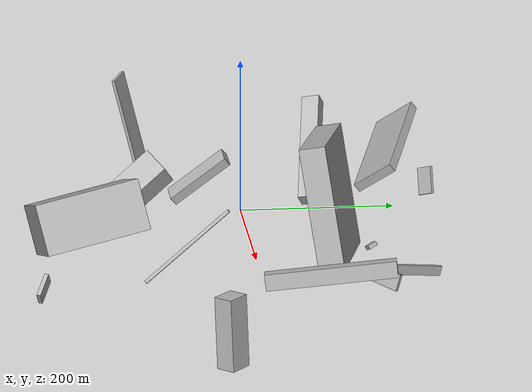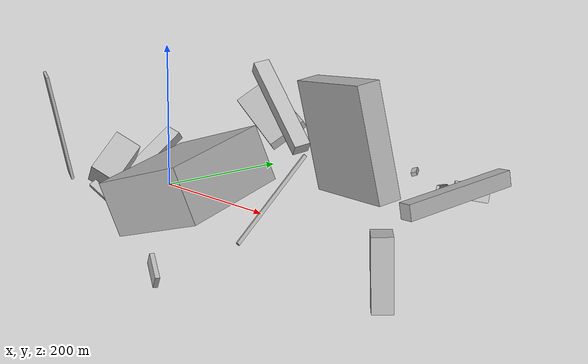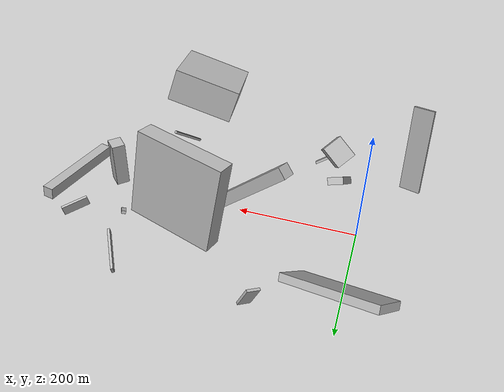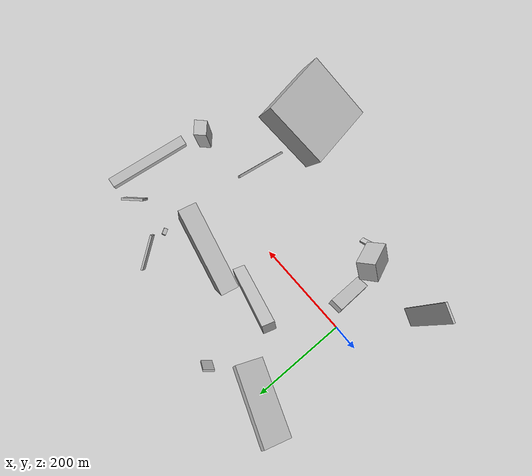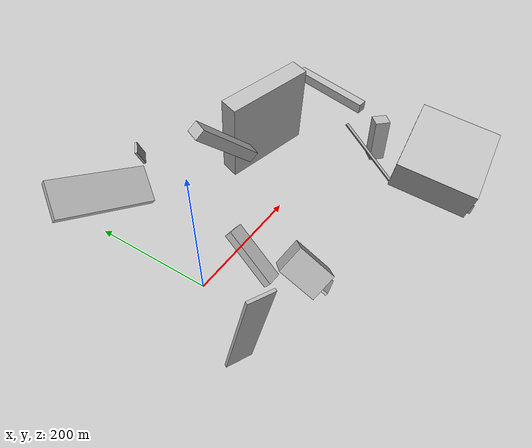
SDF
<sdf version="1.6">
 <world name="default">
  <scene>
   <sky><clouds><speed>12</speed></clouds></sky>
   <ambient>0.4 0.4 0.4 1</ambient>
   <background>0.7 0.7 0.7 1</background>
   <shadows>1</shadows>
  </scene>
  <gravity>0 0 -9.8066</gravity>
  <magnetic_field>6e-06 2.3e-05 -4.2e-05</magnetic_field>
  <physics default="0" name="default_physics" type="ode">
   <ode>
    <solver>
     <type>quick</type>
     <iters>10</iters>
     <sor>1.0</sor>
     <use_dynamic_moi_rescaling>0</use_dynamic_moi_rescaling>
    </solver>
    <constraints>
     <cfm>0</cfm>
     <erp>0.2</erp>
     <contact_max_correcting_vel>100</contact_max_correcting_vel>
     <contact_surface_layer>0.001</contact_surface_layer>
    </constraints>
   </ode>
   <max_step_size>0.004</max_step_size>
   <real_time_factor>1</real_time_factor>
   <real_time_update_rate>250</real_time_update_rate>
  </physics>
  <light name="sun" type="directional">
   <pose>0 0 10 0 0 0</pose>
   <diffuse>0.8 0.8 0.8 1</diffuse>
   <specular>0.2 0.2 0.2 1</specular>
   <attenuation>
    <range>1000</range>
    <constant>0.9</constant>
    <linear>0.01</linear>
    <quadratic>0.001</quadratic>
   </attenuation>
   <direction>-0.5 0.1 -0.9</direction>
  </light>
  <model name="building_1">
   <static>0</static>
   <pose>340.4231004746844 -262.43453333298174 20.100524837112996 -1.4792090710288854 0.9886123437292084 2.841526161420307</pose>
   <link name="link">
    <gravity>0</gravity>
    <pose>0 0 2.5 0 0 0</pose>
    <collision name="collision"><geometry><box><size>15 32 5</size></box></geometry></collision>
    <visual name="visual">
     <cast_shadows>0</cast_shadows>
     <geometry><box><size>15 32 5</size></box></geometry>
     <material>
      <script>
       <uri>model://HANNAS_wall/materials/scripts</uri>
       <uri>model://HANNAS_wall/materials/textures</uri>
       <name>vrc/HANNAS_wall</name>
      </script>
     </material>
    </visual>
   </link>
  </model>
  <model name="building_2">
   <static>0</static>
   <pose>467.0083424476394 57.98615048852541 60.666833964565626 0.07499493835433677 0.12518282311034798 -1.7123753350281563</pose>
   <link name="link">
    <gravity>0</gravity>
    <pose>0 0 9.5 0 0 0</pose>
    <collision name="collision"><geometry><box><size>150 17 19</size></box></geometry></collision>
    <visual name="visual">
     <cast_shadows>0</cast_shadows>
     <geometry><box><size>150 17 19</size></box></geometry>
     <material>
      <script>
       <uri>model://HANNAS_wall/materials/scripts</uri>
       <uri>model://HANNAS_wall/materials/textures</uri>
       <name>vrc/HANNAS_wall</name>
      </script>
     </material>
    </visual>
   </link>
  </model>
  <model name="building_3">
   <static>0</static>
   <pose>458.87222296221876 -56.954850483574646 45.97546323211478 3.1188530363192517 0.031238322385280112 -2.3559525503898957</pose>
   <link name="link">
    <gravity>0</gravity>
    <pose>0 0 43.0 0 0 0</pose>
    <collision name="collision"><geometry><box><size>24 28 86</size></box></geometry></collision>
    <visual name="visual">
     <cast_shadows>0</cast_shadows>
     <geometry><box><size>24 28 86</size></box></geometry>
     <material>
      <script>
       <uri>model://HANNAS_wall/materials/scripts</uri>
       <uri>model://HANNAS_wall/materials/textures</uri>
       <name>vrc/HANNAS_wall</name>
      </script>
     </material>
    </visual>
   </link>
  </model>
  <model name="building_4">
   <static>0</static>
   <pose>328.0110658125711 -96.63994256620651 64.19592493570717 2.7392503613434473 -0.7226396826567766 1.5427123978304953</pose>
   <link name="link">
    <gravity>0</gravity>
    <pose>0 0 2.0 0 0 0</pose>
    <collision name="collision"><geometry><box><size>130 4 4</size></box></geometry></collision>
    <visual name="visual">
     <cast_shadows>0</cast_shadows>
     <geometry><box><size>130 4 4</size></box></geometry>
     <material>
      <script>
       <uri>model://HANNAS_wall/materials/scripts</uri>
       <uri>model://HANNAS_wall/materials/textures</uri>
       <name>vrc/HANNAS_wall</name>
      </script>
     </material>
    </visual>
   </link>
  </model>
  <model name="building_5">
   <static>0</static>
   <pose>355.68280425373024 114.19313160188133 63.23743935755728 0.8300491796920125 -1.0997464175882343 -1.9181080588436714</pose>
   <link name="link">
    <gravity>0</gravity>
    <pose>0 0 6.0 0 0 0</pose>
    <collision name="collision"><geometry><box><size>5 7 12</size></box></geometry></collision>
    <visual name="visual">
     <cast_shadows>0</cast_shadows>
     <geometry><box><size>5 7 12</size></box></geometry>
     <material>
      <script>
       <uri>model://HANNAS_wall/materials/scripts</uri>
       <uri>model://HANNAS_wall/materials/textures</uri>
       <name>vrc/HANNAS_wall</name>
      </script>
     </material>
    </visual>
   </link>
  </model>
  <model name="building_6">
   <static>0</static>
   <pose>208.2241608196394 62.86562951552219 77.59658108755244 -0.7888157984447598 -0.19230581612101297 1.2221951631095624</pose>
   <link name="link">
    <gravity>0</gravity>
    <pose>0 0 71.0 0 0 0</pose>
    <collision name="collision"><geometry><box><size>22 19 142</size></box></geometry></collision>
    <visual name="visual">
     <cast_shadows>0</cast_shadows>
     <geometry><box><size>22 19 142</size></box></geometry>
     <material>
      <script>
       <uri>model://HANNAS_wall/materials/scripts</uri>
       <uri>model://HANNAS_wall/materials/textures</uri>
       <name>vrc/HANNAS_wall</name>
      </script>
     </material>
    </visual>
   </link>
  </model>
  <model name="building_7">
   <static>0</static>
   <pose>276.68934040330123 95.4327090944932 103.262107934992 1.754304285330723 -0.08847814580009383 -0.2603237359583253</pose>
   <link name="link">
    <gravity>0</gravity>
    <pose>0 0 15.5 0 0 0</pose>
    <collision name="collision"><geometry><box><size>150 150 31</size></box></geometry></collision>
    <visual name="visual">
     <cast_shadows>0</cast_shadows>
     <geometry><box><size>150 150 31</size></box></geometry>
     <material>
      <script>
       <uri>model://HANNAS_wall/materials/scripts</uri>
       <uri>model://HANNAS_wall/materials/textures</uri>
       <name>vrc/HANNAS_wall</name>
      </script>
     </material>
    </visual>
   </link>
  </model>
  <model name="building_8">
   <static>0</static>
   <pose>353.3497538277636 175.3305009047138 32.57777157201681 1.4800540444943564 -0.21467438526646157 -1.0499965872990367</pose>
   <link name="link">
    <gravity>0</gravity>
    <pose>0 0 2.0 0 0 0</pose>
    <collision name="collision"><geometry><box><size>71 12 4</size></box></geometry></collision>
    <visual name="visual">
     <cast_shadows>0</cast_shadows>
     <geometry><box><size>71 12 4</size></box></geometry>
     <material>
      <script>
       <uri>model://HANNAS_wall/materials/scripts</uri>
       <uri>model://HANNAS_wall/materials/textures</uri>
       <name>vrc/HANNAS_wall</name>
      </script>
     </material>
    </visual>
   </link>
  </model>
  <model name="building_9">
   <static>0</static>
   <pose>55.41924238093297 -56.564799423189875 57.274809936191446 1.1945900671210619 -0.8488377657936048 -1.2059228723936437</pose>
   <link name="link">
    <gravity>0</gravity>
    <pose>0 0 12.5 0 0 0</pose>
    <collision name="collision"><geometry><box><size>12 87 25</size></box></geometry></collision>
    <visual name="visual">
     <cast_shadows>0</cast_shadows>
     <geometry><box><size>12 87 25</size></box></geometry>
     <material>
      <script>
       <uri>model://HANNAS_wall/materials/scripts</uri>
       <uri>model://HANNAS_wall/materials/textures</uri>
       <name>vrc/HANNAS_wall</name>
      </script>
     </material>
    </visual>
   </link>
  </model>
  <model name="building_10">
   <static>0</static>
   <pose>44.551779432759474 -123.74213697123254 50.03738012784811 0.7190243171646266 -0.673759288765079 1.7917193678600571</pose>
   <link name="link">
    <gravity>0</gravity>
    <pose>0 0 20.5 0 0 0</pose>
    <collision name="collision"><geometry><box><size>60 36 41</size></box></geometry></collision>
    <visual name="visual">
     <cast_shadows>0</cast_shadows>
     <geometry><box><size>60 36 41</size></box></geometry>
     <material>
      <script>
       <uri>model://HANNAS_wall/materials/scripts</uri>
       <uri>model://HANNAS_wall/materials/textures</uri>
       <name>vrc/HANNAS_wall</name>
      </script>
     </material>
    </visual>
   </link>
  </model>
  <model name="building_11">
   <static>0</static>
   <pose>270.8604753941447 -218.21728328998555 84.73715614900611 1.2657927510775724 -0.1925094929121173 1.7235259448089013</pose>
   <link name="link">
    <gravity>0</gravity>
    <pose>0 0 61.0 0 0 0</pose>
    <collision name="collision"><geometry><box><size>122 60 122</size></box></geometry></collision>
    <visual name="visual">
     <cast_shadows>0</cast_shadows>
     <geometry><box><size>122 60 122</size></box></geometry>
     <material>
      <script>
       <uri>model://HANNAS_wall/materials/scripts</uri>
       <uri>model://HANNAS_wall/materials/textures</uri>
       <name>vrc/HANNAS_wall</name>
      </script>
     </material>
    </visual>
   </link>
  </model>
  <model name="building_12">
   <static>0</static>
   <pose>73.27361220700986 163.84383259673115 61.220988164796296 1.1013720588056792 -0.8749044335927414 -1.5423410000471947</pose>
   <link name="link">
    <gravity>0</gravity>
    <pose>0 0 75.0 0 0 0</pose>
    <collision name="collision"><geometry><box><size>12 59 150</size></box></geometry></collision>
    <visual name="visual">
     <cast_shadows>0</cast_shadows>
     <geometry><box><size>12 59 150</size></box></geometry>
     <material>
      <script>
       <uri>model://HANNAS_wall/materials/scripts</uri>
       <uri>model://HANNAS_wall/materials/textures</uri>
       <name>vrc/HANNAS_wall</name>
      </script>
     </material>
    </visual>
   </link>
  </model>
  <model name="building_13">
   <static>0</static>
   <pose>76.47733668855234 -154.7512902298824 25.833122798354054 -0.5097141119136491 -0.530179620193347 -2.8560662302234325</pose>
   <link name="link">
    <gravity>0</gravity>
    <pose>0 0 2.0 0 0 0</pose>
    <collision name="collision"><geometry><box><size>50 11 4</size></box></geometry></collision>
    <visual name="visual">
     <cast_shadows>0</cast_shadows>
     <geometry><box><size>50 11 4</size></box></geometry>
     <material>
      <script>
       <uri>model://HANNAS_wall/materials/scripts</uri>
       <uri>model://HANNAS_wall/materials/textures</uri>
       <name>vrc/HANNAS_wall</name>
      </script>
     </material>
    </visual>
   </link>
  </model>
  <model name="building_14">
   <static>0</static>
   <pose>-70.17556582937803 -133.55591131715522 92.59927139559707 2.61507673272939 -1.3317149703234665 -1.4510163692306148</pose>
   <link name="link">
    <gravity>0</gravity>
    <pose>0 0 2.0 0 0 0</pose>
    <collision name="collision"><geometry><box><size>150 36 4</size></box></geometry></collision>
    <visual name="visual">
     <cast_shadows>0</cast_shadows>
     <geometry><box><size>150 36 4</size></box></geometry>
     <material>
      <script>
       <uri>model://HANNAS_wall/materials/scripts</uri>
       <uri>model://HANNAS_wall/materials/textures</uri>
       <name>vrc/HANNAS_wall</name>
      </script>
     </material>
    </visual>
   </link>
  </model>
  <model name="building_15">
   <static>0</static>
   <pose>437.79800616324263 119.58052513142661 45.99792664893698 -0.228150125265194 0.1521700290029106 0.7799386371211788</pose>
   <link name="link">
    <gravity>0</gravity>
    <pose>0 0 10.0 0 0 0</pose>
    <collision name="collision"><geometry><box><size>42 4 20</size></box></geometry></collision>
    <visual name="visual">
     <cast_shadows>0</cast_shadows>
     <geometry><box><size>42 4 20</size></box></geometry>
     <material>
      <script>
       <uri>model://HANNAS_wall/materials/scripts</uri>
       <uri>model://HANNAS_wall/materials/textures</uri>
       <name>vrc/HANNAS_wall</name>
      </script>
     </material>
    </visual>
   </link>
  </model>
  <model name="building_16">
   <static>0</static>
   <pose>110.36995943122719 214.94065388772984 66.43363948646554 1.23873373330336 0.24400199972198727 2.232853805053086</pose>
   <link name="link">
    <gravity>0</gravity>
    <pose>0 0 10.5 0 0 0</pose>
    <collision name="collision"><geometry><box><size>4 34 21</size></box></geometry></collision>
    <visual name="visual">
     <cast_shadows>0</cast_shadows>
     <geometry><box><size>4 34 21</size></box></geometry>
     <material>
      <script>
       <uri>model://HANNAS_wall/materials/scripts</uri>
       <uri>model://HANNAS_wall/materials/textures</uri>
       <name>vrc/HANNAS_wall</name>
      </script>
     </material>
    </visual>
   </link>
  </model>
 </world>
</sdf>
